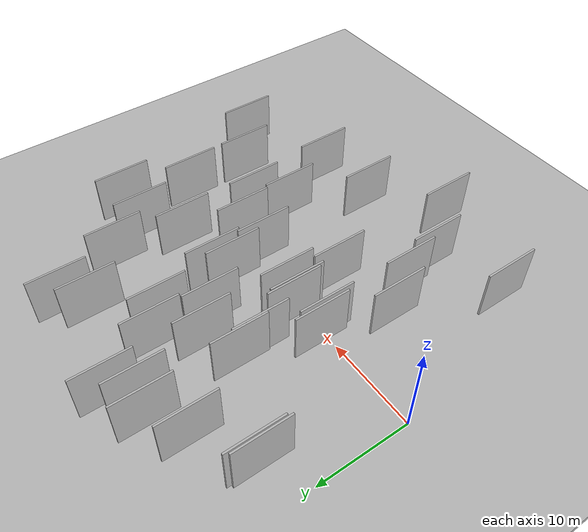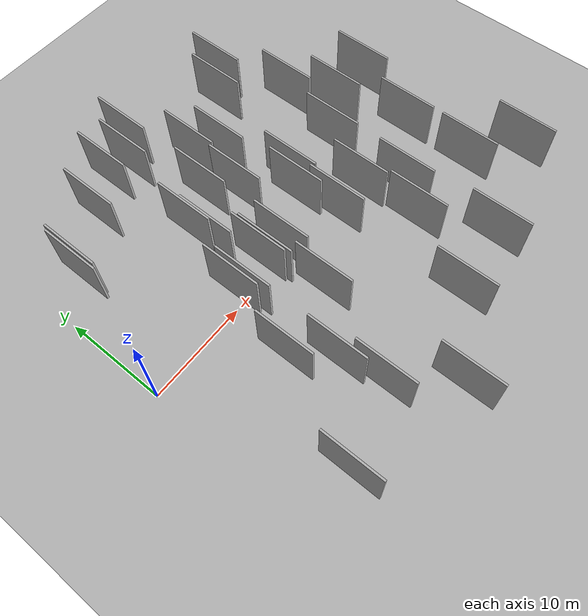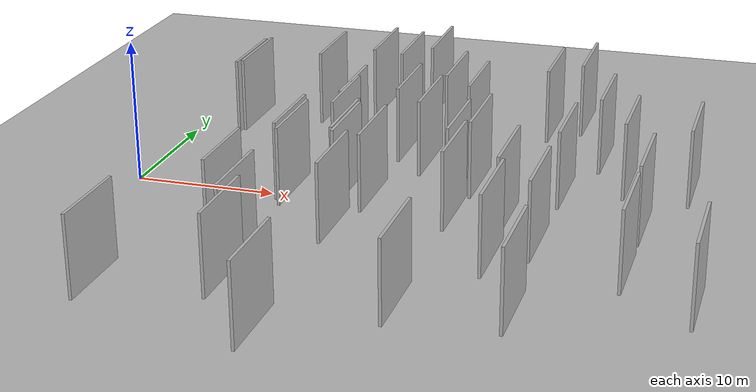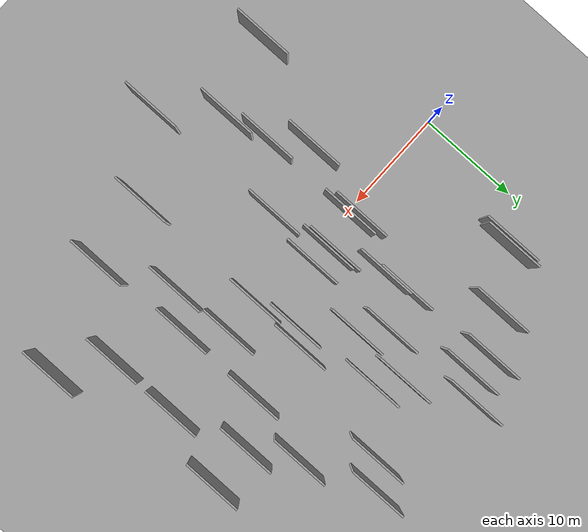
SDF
<?xml version="1.0" encoding="utf-8"?>

<sdf version="1.6">

   <world name="default">

      <gui fullscreen="0">

         <camera name="user_camera">

            <pose>-15 0 4.57585 0 0 0</pose>

            <view_controller>orbit</view_controller>

         </camera>

      </gui>

      <scene>

         <sky>

           <clouds>

             <speed>12</speed>

           </clouds>

         </sky>

         <ambient>0.4 0.4 0.4 1</ambient>

         <background>0.7 0.7 0.7 1</background>

         <shadows>1</shadows>

      </scene>

      <gravity>0 0 -9.8066</gravity>

      <magnetic_field>6e-06 2.3e-05 -4.2e-05</magnetic_field>

      <physics default="0" name="default_physics" type="ode">

         <ode>

            <solver>

               <type>quick</type>

               <iters>10</iters>

               <sor>1.0</sor>

               <use_dynamic_moi_rescaling>0</use_dynamic_moi_rescaling>

            </solver>

            <constraints>

               <cfm>0</cfm>

               <erp>0.2</erp>

               <contact_max_correcting_vel>100</contact_max_correcting_vel>

               <contact_surface_layer>0.001</contact_surface_layer>

            </constraints>

         </ode>

         <max_step_size>0.004</max_step_size>

         <real_time_factor>1</real_time_factor>

         <real_time_update_rate>250</real_time_update_rate>

      </physics>

      <light name="sun" type="directional">

         <cast_shadows>1</cast_shadows>

         <pose>0 0 10 0 0 0</pose>

         <diffuse>0.8 0.8 0.8 1</diffuse>

         <specular>0.2 0.2 0.2 1</specular>

         <attenuation>

            <range>1000</range>

            <constant>0.9</constant>

            <linear>0.01</linear>

            <quadratic>0.001</quadratic>

         </attenuation>

         <direction>-0.5 0.1 -0.9</direction>

      </light>

      <include>

         <name>ground_plane_1</name>

         <uri>model://HANNAS_ground_plane</uri>

         <pose>0 0 0  0 0 0</pose>

      </include>

      <include>

         <name>ground_plane_2</name>

         <uri>model://HANNAS_ground_plane</uri>

         <pose>100 0 0  0 0 0</pose>

      </include>

      <model name="HANNAS_wall_1">

         <static>1</static>

         <pose frame="">12.2431 -14.0350 0.0 0.000000 0.000000 1.570796</pose>

         <link name="link">

            <pose frame="">0 0 3.00 0 0 0</pose>

            <collision name="collision">

               <geometry>

                  <box>

                     <size>6.00 0.2 6.00</size>

                  </box>

               </geometry>

               <max_contacts>10</max_contacts>

               <surface>

                  <contact>

                     <ode/>

                  </contact>

                  <bounce/>

                  <friction>

                     <torsional>

                        <ode/>

                     </torsional>

                     <ode/>

                  </friction>

               </surface>

            </collision>

            <visual name="visual">

               <cast_shadows>0</cast_shadows>

               <geometry>

                  <box>

                     <size>6.00 0.2 6.00</size>

                  </box>

               </geometry>

               <material>

                  <script>

                     <uri>model://HANNAS_wall/materials/scripts</uri>

                     <uri>model://HANNAS_wall/materials/textures</uri>

                     <name>vrc/HANNAS_wall</name>

                  </script>

               </material>

            </visual>

            <self_collide>0</self_collide>

            <enable_wind>0</enable_wind>

            <kinematic>0</kinematic>

         </link>

      </model>

      <model name="HANNAS_wall_2">

         <static>1</static>

         <pose frame="">27.0997 -6.8544 0.0 0.000000 0.000000 1.570796</pose>

         <link name="link">

            <pose frame="">0 0 3.00 0 0 0</pose>

            <collision name="collision">

               <geometry>

                  <box>

                     <size>6.00 0.2 6.00</size>

                  </box>

               </geometry>

               <max_contacts>10</max_contacts>

               <surface>

                  <contact>

                     <ode/>

                  </contact>

                  <bounce/>

                  <friction>

                     <torsional>

                        <ode/>

                     </torsional>

                     <ode/>

                  </friction>

               </surface>

            </collision>

            <visual name="visual">

               <cast_shadows>0</cast_shadows>

               <geometry>

                  <box>

                     <size>6.00 0.2 6.00</size>

                  </box>

               </geometry>

               <material>

                  <script>

                     <uri>model://HANNAS_wall/materials/scripts</uri>

                     <uri>model://HANNAS_wall/materials/textures</uri>

                     <name>vrc/HANNAS_wall</name>

                  </script>

               </material>

            </visual>

            <self_collide>0</self_collide>

            <enable_wind>0</enable_wind>

            <kinematic>0</kinematic>

         </link>

      </model>

      <model name="HANNAS_wall_3">

         <static>1</static>

         <pose frame="">31.1081 11.6562 0.0 0.000000 0.000000 1.570796</pose>

         <link name="link">

            <pose frame="">0 0 3.00 0 0 0</pose>

            <collision name="collision">

               <geometry>

                  <box>

                     <size>6.00 0.2 6.00</size>

                  </box>

               </geometry>

               <max_contacts>10</max_contacts>

               <surface>

                  <contact>

                     <ode/>

                  </contact>

                  <bounce/>

                  <friction>

                     <torsional>

                        <ode/>

                     </torsional>

                     <ode/>

                  </friction>

               </surface>

            </collision>

            <visual name="visual">

               <cast_shadows>0</cast_shadows>

               <geometry>

                  <box>

                     <size>6.00 0.2 6.00</size>

                  </box>

               </geometry>

               <material>

                  <script>

                     <uri>model://HANNAS_wall/materials/scripts</uri>

                     <uri>model://HANNAS_wall/materials/textures</uri>

                     <name>vrc/HANNAS_wall</name>

                  </script>

               </material>

            </visual>

            <self_collide>0</self_collide>

            <enable_wind>0</enable_wind>

            <kinematic>0</kinematic>

         </link>

      </model>

      <model name="HANNAS_wall_4">

         <static>1</static>

         <pose frame="">37.8687 7.3171 0.0 0.000000 0.000000 1.570796</pose>

         <link name="link">

            <pose frame="">0 0 3.00 0 0 0</pose>

            <collision name="collision">

               <geometry>

                  <box>

                     <size>6.00 0.2 6.00</size>

                  </box>

               </geometry>

               <max_contacts>10</max_contacts>

               <surface>

                  <contact>

                     <ode/>

                  </contact>

                  <bounce/>

                  <friction>

                     <torsional>

                        <ode/>

                     </torsional>

                     <ode/>

                  </friction>

               </surface>

            </collision>

            <visual name="visual">

               <cast_shadows>0</cast_shadows>

               <geometry>

                  <box>

                     <size>6.00 0.2 6.00</size>

                  </box>

               </geometry>

               <material>

                  <script>

                     <uri>model://HANNAS_wall/materials/scripts</uri>

                     <uri>model://HANNAS_wall/materials/textures</uri>

                     <name>vrc/HANNAS_wall</name>

                  </script>

               </material>

            </visual>

            <self_collide>0</self_collide>

            <enable_wind>0</enable_wind>

            <kinematic>0</kinematic>

         </link>

      </model>

      <model name="HANNAS_wall_5">

         <static>1</static>

         <pose frame="">15.1503 0.8264 0.0 0.000000 0.000000 1.570796</pose>

         <link name="link">

            <pose frame="">0 0 3.00 0 0 0</pose>

            <collision name="collision">

               <geometry>

                  <box>

                     <size>6.00 0.2 6.00</size>

                  </box>

               </geometry>

               <max_contacts>10</max_contacts>

               <surface>

                  <contact>

                     <ode/>

                  </contact>

                  <bounce/>

                  <friction>

                     <torsional>

                        <ode/>

                     </torsional>

                     <ode/>

                  </friction>

               </surface>

            </collision>

            <visual name="visual">

               <cast_shadows>0</cast_shadows>

               <geometry>

                  <box>

                     <size>6.00 0.2 6.00</size>

                  </box>

               </geometry>

               <material>

                  <script>

                     <uri>model://HANNAS_wall/materials/scripts</uri>

                     <uri>model://HANNAS_wall/materials/textures</uri>

                     <name>vrc/HANNAS_wall</name>

                  </script>

               </material>

            </visual>

            <self_collide>0</self_collide>

            <enable_wind>0</enable_wind>

            <kinematic>0</kinematic>

         </link>

      </model>

      <model name="HANNAS_wall_6">

         <static>1</static>

         <pose frame="">26.7278 -0.7350 0.0 0.000000 0.000000 1.570796</pose>

         <link name="link">

            <pose frame="">0 0 3.00 0 0 0</pose>

            <collision name="collision">

               <geometry>

                  <box>

                     <size>6.00 0.2 6.00</size>

                  </box>

               </geometry>

               <max_contacts>10</max_contacts>

               <surface>

                  <contact>

                     <ode/>

                  </contact>

                  <bounce/>

                  <friction>

                     <torsional>

                        <ode/>

                     </torsional>

                     <ode/>

                  </friction>

               </surface>

            </collision>

            <visual name="visual">

               <cast_shadows>0</cast_shadows>

               <geometry>

                  <box>

                     <size>6.00 0.2 6.00</size>

                  </box>

               </geometry>

               <material>

                  <script>

                     <uri>model://HANNAS_wall/materials/scripts</uri>

                     <uri>model://HANNAS_wall/materials/textures</uri>

                     <name>vrc/HANNAS_wall</name>

                  </script>

               </material>

            </visual>

            <self_collide>0</self_collide>

            <enable_wind>0</enable_wind>

            <kinematic>0</kinematic>

         </link>

      </model>

      <model name="HANNAS_wall_7">

         <static>1</static>

         <pose frame="">9.1237 -6.3255 0.0 0.000000 0.000000 1.570796</pose>

         <link name="link">

            <pose frame="">0 0 3.00 0 0 0</pose>

            <collision name="collision">

               <geometry>

                  <box>

                     <size>6.00 0.2 6.00</size>

                  </box>

               </geometry>

               <max_contacts>10</max_contacts>

               <surface>

                  <contact>

                     <ode/>

                  </contact>

                  <bounce/>

                  <friction>

                     <torsional>

                        <ode/>

                     </torsional>

                     <ode/>

                  </friction>

               </surface>

            </collision>

            <visual name="visual">

               <cast_shadows>0</cast_shadows>

               <geometry>

                  <box>

                     <size>6.00 0.2 6.00</size>

                  </box>

               </geometry>

               <material>

                  <script>

                     <uri>model://HANNAS_wall/materials/scripts</uri>

                     <uri>model://HANNAS_wall/materials/textures</uri>

                     <name>vrc/HANNAS_wall</name>

                  </script>

               </material>

            </visual>

            <self_collide>0</self_collide>

            <enable_wind>0</enable_wind>

            <kinematic>0</kinematic>

         </link>

      </model>

      <model name="HANNAS_wall_8">

         <static>1</static>

         <pose frame="">40.1917 -10.1299 0.0 0.000000 0.000000 1.570796</pose>

         <link name="link">

            <pose frame="">0 0 3.00 0 0 0</pose>

            <collision name="collision">

               <geometry>

                  <box>

                     <size>6.00 0.2 6.00</size>

                  </box>

               </geometry>

               <max_contacts>10</max_contacts>

               <surface>

                  <contact>

                     <ode/>

                  </contact>

                  <bounce/>

                  <friction>

                     <torsional>

                        <ode/>

                     </torsional>

                     <ode/>

                  </friction>

               </surface>

            </collision>

            <visual name="visual">

               <cast_shadows>0</cast_shadows>

               <geometry>

                  <box>

                     <size>6.00 0.2 6.00</size>

                  </box>

               </geometry>

               <material>

                  <script>

                     <uri>model://HANNAS_wall/materials/scripts</uri>

                     <uri>model://HANNAS_wall/materials/textures</uri>

                     <name>vrc/HANNAS_wall</name>

                  </script>

               </material>

            </visual>

            <self_collide>0</self_collide>

            <enable_wind>0</enable_wind>

            <kinematic>0</kinematic>

         </link>

      </model>

      <model name="HANNAS_wall_9">

         <static>1</static>

         <pose frame="">11.0184 1.0518 0.0 0.000000 0.000000 1.570796</pose>

         <link name="link">

            <pose frame="">0 0 3.00 0 0 0</pose>

            <collision name="collision">

               <geometry>

                  <box>

                     <size>6.00 0.2 6.00</size>

                  </box>

               </geometry>

               <max_contacts>10</max_contacts>

               <surface>

                  <contact>

                     <ode/>

                  </contact>

                  <bounce/>

                  <friction>

                     <torsional>

                        <ode/>

                     </torsional>

                     <ode/>

                  </friction>

               </surface>

            </collision>

            <visual name="visual">

               <cast_shadows>0</cast_shadows>

               <geometry>

                  <box>

                     <size>6.00 0.2 6.00</size>

                  </box>

               </geometry>

               <material>

                  <script>

                     <uri>model://HANNAS_wall/materials/scripts</uri>

                     <uri>model://HANNAS_wall/materials/textures</uri>

                     <name>vrc/HANNAS_wall</name>

                  </script>

               </material>

            </visual>

            <self_collide>0</self_collide>

            <enable_wind>0</enable_wind>

            <kinematic>0</kinematic>

         </link>

      </model>

      <model name="HANNAS_wall_10">

         <static>1</static>

         <pose frame="">19.4521 13.7732 0.0 0.000000 0.000000 1.570796</pose>

         <link name="link">

            <pose frame="">0 0 3.00 0 0 0</pose>

            <collision name="collision">

               <geometry>

                  <box>

                     <size>6.00 0.2 6.00</size>

                  </box>

               </geometry>

               <max_contacts>10</max_contacts>

               <surface>

                  <contact>

                     <ode/>

                  </contact>

                  <bounce/>

                  <friction>

                     <torsional>

                        <ode/>

                     </torsional>

                     <ode/>

                  </friction>

               </surface>

            </collision>

            <visual name="visual">

               <cast_shadows>0</cast_shadows>

               <geometry>

                  <box>

                     <size>6.00 0.2 6.00</size>

                  </box>

               </geometry>

               <material>

                  <script>

                     <uri>model://HANNAS_wall/materials/scripts</uri>

                     <uri>model://HANNAS_wall/materials/textures</uri>

                     <name>vrc/HANNAS_wall</name>

                  </script>

               </material>

            </visual>

            <self_collide>0</self_collide>

            <enable_wind>0</enable_wind>

            <kinematic>0</kinematic>

         </link>

      </model>

      <model name="HANNAS_wall_11">

         <static>1</static>

         <pose frame="">33.4874 7.4057 0.0 0.000000 0.000000 1.570796</pose>

         <link name="link">

            <pose frame="">0 0 3.00 0 0 0</pose>

            <collision name="collision">

               <geometry>

                  <box>

                     <size>6.00 0.2 6.00</size>

                  </box>

               </geometry>

               <max_contacts>10</max_contacts>

               <surface>

                  <contact>

                     <ode/>

                  </contact>

                  <bounce/>

                  <friction>

                     <torsional>

                        <ode/>

                     </torsional>

                     <ode/>

                  </friction>

               </surface>

            </collision>

            <visual name="visual">

               <cast_shadows>0</cast_shadows>

               <geometry>

                  <box>

                     <size>6.00 0.2 6.00</size>

                  </box>

               </geometry>

               <material>

                  <script>

                     <uri>model://HANNAS_wall/materials/scripts</uri>

                     <uri>model://HANNAS_wall/materials/textures</uri>

                     <name>vrc/HANNAS_wall</name>

                  </script>

               </material>

            </visual>

            <self_collide>0</self_collide>

            <enable_wind>0</enable_wind>

            <kinematic>0</kinematic>

         </link>

      </model>

      <model name="HANNAS_wall_12">

         <static>1</static>

         <pose frame="">16.3229 -19.4222 0.0 0.000000 0.000000 1.570796</pose>

         <link name="link">

            <pose frame="">0 0 3.00 0 0 0</pose>

            <collision name="collision">

               <geometry>

                  <box>

                     <size>6.00 0.2 6.00</size>

                  </box>

               </geometry>

               <max_contacts>10</max_contacts>

               <surface>

                  <contact>

                     <ode/>

                  </contact>

                  <bounce/>

                  <friction>

                     <torsional>

                        <ode/>

                     </torsional>

                     <ode/>

                  </friction>

               </surface>

            </collision>

            <visual name="visual">

               <cast_shadows>0</cast_shadows>

               <geometry>

                  <box>

                     <size>6.00 0.2 6.00</size>

                  </box>

               </geometry>

               <material>

                  <script>

                     <uri>model://HANNAS_wall/materials/scripts</uri>

                     <uri>model://HANNAS_wall/materials/textures</uri>

                     <name>vrc/HANNAS_wall</name>

                  </script>

               </material>

            </visual>

            <self_collide>0</self_collide>

            <enable_wind>0</enable_wind>

            <kinematic>0</kinematic>

         </link>

      </model>

      <model name="HANNAS_wall_13">

         <static>1</static>

         <pose frame="">16.9138 9.9821 0.0 0.000000 0.000000 1.570796</pose>

         <link name="link">

            <pose frame="">0 0 3.00 0 0 0</pose>

            <collision name="collision">

               <geometry>

                  <box>

                     <size>6.00 0.2 6.00</size>

                  </box>

               </geometry>

               <max_contacts>10</max_contacts>

               <surface>

                  <contact>

                     <ode/>

                  </contact>

                  <bounce/>

                  <friction>

                     <torsional>

                        <ode/>

                     </torsional>

                     <ode/>

                  </friction>

               </surface>

            </collision>

            <visual name="visual">

               <cast_shadows>0</cast_shadows>

               <geometry>

                  <box>

                     <size>6.00 0.2 6.00</size>

                  </box>

               </geometry>

               <material>

                  <script>

                     <uri>model://HANNAS_wall/materials/scripts</uri>

                     <uri>model://HANNAS_wall/materials/textures</uri>

                     <name>vrc/HANNAS_wall</name>

                  </script>

               </material>

            </visual>

            <self_collide>0</self_collide>

            <enable_wind>0</enable_wind>

            <kinematic>0</kinematic>

         </link>

      </model>

      <model name="HANNAS_wall_14">

         <static>1</static>

         <pose frame="">12.5975 18.2146 0.0 0.000000 0.000000 1.570796</pose>

         <link name="link">

            <pose frame="">0 0 3.00 0 0 0</pose>

            <collision name="collision">

               <geometry>

                  <box>

                     <size>6.00 0.2 6.00</size>

                  </box>

               </geometry>

               <max_contacts>10</max_contacts>

               <surface>

                  <contact>

                     <ode/>

                  </contact>

                  <bounce/>

                  <friction>

                     <torsional>

                        <ode/>

                     </torsional>

                     <ode/>

                  </friction>

               </surface>

            </collision>

            <visual name="visual">

               <cast_shadows>0</cast_shadows>

               <geometry>

                  <box>

                     <size>6.00 0.2 6.00</size>

                  </box>

               </geometry>

               <material>

                  <script>

                     <uri>model://HANNAS_wall/materials/scripts</uri>

                     <uri>model://HANNAS_wall/materials/textures</uri>

                     <name>vrc/HANNAS_wall</name>

                  </script>

               </material>

            </visual>

            <self_collide>0</self_collide>

            <enable_wind>0</enable_wind>

            <kinematic>0</kinematic>

         </link>

      </model>

      <model name="HANNAS_wall_15">

         <static>1</static>

         <pose frame="">3.6692 12.4958 0.0 0.000000 0.000000 1.570796</pose>

         <link name="link">

            <pose frame="">0 0 3.00 0 0 0</pose>

            <collision name="collision">

               <geometry>

                  <box>

                     <size>6.00 0.2 6.00</size>

                  </box>

               </geometry>

               <max_contacts>10</max_contacts>

               <surface>

                  <contact>

                     <ode/>

                  </contact>

                  <bounce/>

                  <friction>

                     <torsional>

                        <ode/>

                     </torsional>

                     <ode/>

                  </friction>

               </surface>

            </collision>

            <visual name="visual">

               <cast_shadows>0</cast_shadows>

               <geometry>

                  <box>

                     <size>6.00 0.2 6.00</size>

                  </box>

               </geometry>

               <material>

                  <script>

                     <uri>model://HANNAS_wall/materials/scripts</uri>

                     <uri>model://HANNAS_wall/materials/textures</uri>

                     <name>vrc/HANNAS_wall</name>

                  </script>

               </material>

            </visual>

            <self_collide>0</self_collide>

            <enable_wind>0</enable_wind>

            <kinematic>0</kinematic>

         </link>

      </model>

      <model name="HANNAS_wall_16">

         <static>1</static>

         <pose frame="">11.4764 -9.8431 0.0 0.000000 0.000000 1.570796</pose>

         <link name="link">

            <pose frame="">0 0 3.00 0 0 0</pose>

            <collision name="collision">

               <geometry>

                  <box>

                     <size>6.00 0.2 6.00</size>

                  </box>

               </geometry>

               <max_contacts>10</max_contacts>

               <surface>

                  <contact>

                     <ode/>

                  </contact>

                  <bounce/>

                  <friction>

                     <torsional>

                        <ode/>

                     </torsional>

                     <ode/>

                  </friction>

               </surface>

            </collision>

            <visual name="visual">

               <cast_shadows>0</cast_shadows>

               <geometry>

                  <box>

                     <size>6.00 0.2 6.00</size>

                  </box>

               </geometry>

               <material>

                  <script>

                     <uri>model://HANNAS_wall/materials/scripts</uri>

                     <uri>model://HANNAS_wall/materials/textures</uri>

                     <name>vrc/HANNAS_wall</name>

                  </script>

               </material>

            </visual>

            <self_collide>0</self_collide>

            <enable_wind>0</enable_wind>

            <kinematic>0</kinematic>

         </link>

      </model>

      <model name="HANNAS_wall_17">

         <static>1</static>

         <pose frame="">22.3352 3.3064 0.0 0.000000 0.000000 1.570796</pose>

         <link name="link">

            <pose frame="">0 0 3.00 0 0 0</pose>

            <collision name="collision">

               <geometry>

                  <box>

                     <size>6.00 0.2 6.00</size>

                  </box>

               </geometry>

               <max_contacts>10</max_contacts>

               <surface>

                  <contact>

                     <ode/>

                  </contact>

                  <bounce/>

                  <friction>

                     <torsional>

                        <ode/>

                     </torsional>

                     <ode/>

                  </friction>

               </surface>

            </collision>

            <visual name="visual">

               <cast_shadows>0</cast_shadows>

               <geometry>

                  <box>

                     <size>6.00 0.2 6.00</size>

                  </box>

               </geometry>

               <material>

                  <script>

                     <uri>model://HANNAS_wall/materials/scripts</uri>

                     <uri>model://HANNAS_wall/materials/textures</uri>

                     <name>vrc/HANNAS_wall</name>

                  </script>

               </material>

            </visual>

            <self_collide>0</self_collide>

            <enable_wind>0</enable_wind>

            <kinematic>0</kinematic>

         </link>

      </model>

      <model name="HANNAS_wall_18">

         <static>1</static>

         <pose frame="">28.5294 18.6801 0.0 0.000000 0.000000 1.570796</pose>

         <link name="link">

            <pose frame="">0 0 3.00 0 0 0</pose>

            <collision name="collision">

               <geometry>

                  <box>

                     <size>6.00 0.2 6.00</size>

                  </box>

               </geometry>

               <max_contacts>10</max_contacts>

               <surface>

                  <contact>

                     <ode/>

                  </contact>

                  <bounce/>

                  <friction>

                     <torsional>

                        <ode/>

                     </torsional>

                     <ode/>

                  </friction>

               </surface>

            </collision>

            <visual name="visual">

               <cast_shadows>0</cast_shadows>

               <geometry>

                  <box>

                     <size>6.00 0.2 6.00</size>

                  </box>

               </geometry>

               <material>

                  <script>

                     <uri>model://HANNAS_wall/materials/scripts</uri>

                     <uri>model://HANNAS_wall/materials/textures</uri>

                     <name>vrc/HANNAS_wall</name>

                  </script>

               </material>

            </visual>

            <self_collide>0</self_collide>

            <enable_wind>0</enable_wind>

            <kinematic>0</kinematic>

         </link>

      </model>

      <model name="HANNAS_wall_19">

         <static>1</static>

         <pose frame="">23.4702 4.8727 0.0 0.000000 0.000000 1.570796</pose>

         <link name="link">

            <pose frame="">0 0 3.00 0 0 0</pose>

            <collision name="collision">

               <geometry>

                  <box>

                     <size>6.00 0.2 6.00</size>

                  </box>

               </geometry>

               <max_contacts>10</max_contacts>

               <surface>

                  <contact>

                     <ode/>

                  </contact>

                  <bounce/>

                  <friction>

                     <torsional>

                        <ode/>

                     </torsional>

                     <ode/>

                  </friction>

               </surface>

            </collision>

            <visual name="visual">

               <cast_shadows>0</cast_shadows>

               <geometry>

                  <box>

                     <size>6.00 0.2 6.00</size>

                  </box>

               </geometry>

               <material>

                  <script>

                     <uri>model://HANNAS_wall/materials/scripts</uri>

                     <uri>model://HANNAS_wall/materials/textures</uri>

                     <name>vrc/HANNAS_wall</name>

                  </script>

               </material>

            </visual>

            <self_collide>0</self_collide>

            <enable_wind>0</enable_wind>

            <kinematic>0</kinematic>

         </link>

      </model>

      <model name="HANNAS_wall_20">

         <static>1</static>

         <pose frame="">29.5401 4.7031 0.0 0.000000 0.000000 1.570796</pose>

         <link name="link">

            <pose frame="">0 0 3.00 0 0 0</pose>

            <collision name="collision">

               <geometry>

                  <box>

                     <size>6.00 0.2 6.00</size>

                  </box>

               </geometry>

               <max_contacts>10</max_contacts>

               <surface>

                  <contact>

                     <ode/>

                  </contact>

                  <bounce/>

                  <friction>

                     <torsional>

                        <ode/>

                     </torsional>

                     <ode/>

                  </friction>

               </surface>

            </collision>

            <visual name="visual">

               <cast_shadows>0</cast_shadows>

               <geometry>

                  <box>

                     <size>6.00 0.2 6.00</size>

                  </box>

               </geometry>

               <material>

                  <script>

                     <uri>model://HANNAS_wall/materials/scripts</uri>

                     <uri>model://HANNAS_wall/materials/textures</uri>

                     <name>vrc/HANNAS_wall</name>

                  </script>

               </material>

            </visual>

            <self_collide>0</self_collide>

            <enable_wind>0</enable_wind>

            <kinematic>0</kinematic>

         </link>

      </model>

      <model name="HANNAS_wall_21">

         <static>1</static>

         <pose frame="">19.0841 7.7829 0.0 0.000000 0.000000 1.570796</pose>

         <link name="link">

            <pose frame="">0 0 3.00 0 0 0</pose>

            <collision name="collision">

               <geometry>

                  <box>

                     <size>6.00 0.2 6.00</size>

                  </box>

               </geometry>

               <max_contacts>10</max_contacts>

               <surface>

                  <contact>

                     <ode/>

                  </contact>

                  <bounce/>

                  <friction>

                     <torsional>

                        <ode/>

                     </torsional>

                     <ode/>

                  </friction>

               </surface>

            </collision>

            <visual name="visual">

               <cast_shadows>0</cast_shadows>

               <geometry>

                  <box>

                     <size>6.00 0.2 6.00</size>

                  </box>

               </geometry>

               <material>

                  <script>

                     <uri>model://HANNAS_wall/materials/scripts</uri>

                     <uri>model://HANNAS_wall/materials/textures</uri>

                     <name>vrc/HANNAS_wall</name>

                  </script>

               </material>

            </visual>

            <self_collide>0</self_collide>

            <enable_wind>0</enable_wind>

            <kinematic>0</kinematic>

         </link>

      </model>

      <model name="HANNAS_wall_22">

         <static>1</static>

         <pose frame="">16.1011 -4.8482 0.0 0.000000 0.000000 1.570796</pose>

         <link name="link">

            <pose frame="">0 0 3.00 0 0 0</pose>

            <collision name="collision">

               <geometry>

                  <box>

                     <size>6.00 0.2 6.00</size>

                  </box>

               </geometry>

               <max_contacts>10</max_contacts>

               <surface>

                  <contact>

                     <ode/>

                  </contact>

                  <bounce/>

                  <friction>

                     <torsional>

                        <ode/>

                     </torsional>

                     <ode/>

                  </friction>

               </surface>

            </collision>

            <visual name="visual">

               <cast_shadows>0</cast_shadows>

               <geometry>

                  <box>

                     <size>6.00 0.2 6.00</size>

                  </box>

               </geometry>

               <material>

                  <script>

                     <uri>model://HANNAS_wall/materials/scripts</uri>

                     <uri>model://HANNAS_wall/materials/textures</uri>

                     <name>vrc/HANNAS_wall</name>

                  </script>

               </material>

            </visual>

            <self_collide>0</self_collide>

            <enable_wind>0</enable_wind>

            <kinematic>0</kinematic>

         </link>

      </model>

      <model name="HANNAS_wall_23">

         <static>1</static>

         <pose frame="">35.5361 0.2810 0.0 0.000000 0.000000 1.570796</pose>

         <link name="link">

            <pose frame="">0 0 3.00 0 0 0</pose>

            <collision name="collision">

               <geometry>

                  <box>

                     <size>6.00 0.2 6.00</size>

                  </box>

               </geometry>

               <max_contacts>10</max_contacts>

               <surface>

                  <contact>

                     <ode/>

                  </contact>

                  <bounce/>

                  <friction>

                     <torsional>

                        <ode/>

                     </torsional>

                     <ode/>

                  </friction>

               </surface>

            </collision>

            <visual name="visual">

               <cast_shadows>0</cast_shadows>

               <geometry>

                  <box>

                     <size>6.00 0.2 6.00</size>

                  </box>

               </geometry>

               <material>

                  <script>

                     <uri>model://HANNAS_wall/materials/scripts</uri>

                     <uri>model://HANNAS_wall/materials/textures</uri>

                     <name>vrc/HANNAS_wall</name>

                  </script>

               </material>

            </visual>

            <self_collide>0</self_collide>

            <enable_wind>0</enable_wind>

            <kinematic>0</kinematic>

         </link>

      </model>

      <model name="HANNAS_wall_24">

         <static>1</static>

         <pose frame="">29.4471 -3.9167 0.0 0.000000 0.000000 1.570796</pose>

         <link name="link">

            <pose frame="">0 0 3.00 0 0 0</pose>

            <collision name="collision">

               <geometry>

                  <box>

                     <size>6.00 0.2 6.00</size>

                  </box>

               </geometry>

               <max_contacts>10</max_contacts>

               <surface>

                  <contact>

                     <ode/>

                  </contact>

                  <bounce/>

                  <friction>

                     <torsional>

                        <ode/>

                     </torsional>

                     <ode/>

                  </friction>

               </surface>

            </collision>

            <visual name="visual">

               <cast_shadows>0</cast_shadows>

               <geometry>

                  <box>

                     <size>6.00 0.2 6.00</size>

                  </box>

               </geometry>

               <material>

                  <script>

                     <uri>model://HANNAS_wall/materials/scripts</uri>

                     <uri>model://HANNAS_wall/materials/textures</uri>

                     <name>vrc/HANNAS_wall</name>

                  </script>

               </material>

            </visual>

            <self_collide>0</self_collide>

            <enable_wind>0</enable_wind>

            <kinematic>0</kinematic>

         </link>

      </model>

      <model name="HANNAS_wall_25">

         <static>1</static>

         <pose frame="">11.5138 0.1690 0.0 0.000000 0.000000 1.570796</pose>

         <link name="link">

            <pose frame="">0 0 3.00 0 0 0</pose>

            <collision name="collision">

               <geometry>

                  <box>

                     <size>6.00 0.2 6.00</size>

                  </box>

               </geometry>

               <max_contacts>10</max_contacts>

               <surface>

                  <contact>

                     <ode/>

                  </contact>

                  <bounce/>

                  <friction>

                     <torsional>

                        <ode/>

                     </torsional>

                     <ode/>

                  </friction>

               </surface>

            </collision>

            <visual name="visual">

               <cast_shadows>0</cast_shadows>

               <geometry>

                  <box>

                     <size>6.00 0.2 6.00</size>

                  </box>

               </geometry>

               <material>

                  <script>

                     <uri>model://HANNAS_wall/materials/scripts</uri>

                     <uri>model://HANNAS_wall/materials/textures</uri>

                     <name>vrc/HANNAS_wall</name>

                  </script>

               </material>

            </visual>

            <self_collide>0</self_collide>

            <enable_wind>0</enable_wind>

            <kinematic>0</kinematic>

         </link>

      </model>

      <model name="HANNAS_wall_26">

         <static>1</static>

         <pose frame="">23.2149 -14.4304 0.0 0.000000 0.000000 1.570796</pose>

         <link name="link">

            <pose frame="">0 0 3.00 0 0 0</pose>

            <collision name="collision">

               <geometry>

                  <box>

                     <size>6.00 0.2 6.00</size>

                  </box>

               </geometry>

               <max_contacts>10</max_contacts>

               <surface>

                  <contact>

                     <ode/>

                  </contact>

                  <bounce/>

                  <friction>

                     <torsional>

                        <ode/>

                     </torsional>

                     <ode/>

                  </friction>

               </surface>

            </collision>

            <visual name="visual">

               <cast_shadows>0</cast_shadows>

               <geometry>

                  <box>

                     <size>6.00 0.2 6.00</size>

                  </box>

               </geometry>

               <material>

                  <script>

                     <uri>model://HANNAS_wall/materials/scripts</uri>

                     <uri>model://HANNAS_wall/materials/textures</uri>

                     <name>vrc/HANNAS_wall</name>

                  </script>

               </material>

            </visual>

            <self_collide>0</self_collide>

            <enable_wind>0</enable_wind>

            <kinematic>0</kinematic>

         </link>

      </model>

      <model name="HANNAS_wall_27">

         <static>1</static>

         <pose frame="">23.1146 -0.8007 0.0 0.000000 0.000000 1.570796</pose>

         <link name="link">

            <pose frame="">0 0 3.00 0 0 0</pose>

            <collision name="collision">

               <geometry>

                  <box>

                     <size>6.00 0.2 6.00</size>

                  </box>

               </geometry>

               <max_contacts>10</max_contacts>

               <surface>

                  <contact>

                     <ode/>

                  </contact>

                  <bounce/>

                  <friction>

                     <torsional>

                        <ode/>

                     </torsional>

                     <ode/>

                  </friction>

               </surface>

            </collision>

            <visual name="visual">

               <cast_shadows>0</cast_shadows>

               <geometry>

                  <box>

                     <size>6.00 0.2 6.00</size>

                  </box>

               </geometry>

               <material>

                  <script>

                     <uri>model://HANNAS_wall/materials/scripts</uri>

                     <uri>model://HANNAS_wall/materials/textures</uri>

                     <name>vrc/HANNAS_wall</name>

                  </script>

               </material>

            </visual>

            <self_collide>0</self_collide>

            <enable_wind>0</enable_wind>

            <kinematic>0</kinematic>

         </link>

      </model>

      <model name="HANNAS_wall_28">

         <static>1</static>

         <pose frame="">4.8129 -16.3485 0.0 0.000000 0.000000 1.570796</pose>

         <link name="link">

            <pose frame="">0 0 3.00 0 0 0</pose>

            <collision name="collision">

               <geometry>

                  <box>

                     <size>6.00 0.2 6.00</size>

                  </box>

               </geometry>

               <max_contacts>10</max_contacts>

               <surface>

                  <contact>

                     <ode/>

                  </contact>

                  <bounce/>

                  <friction>

                     <torsional>

                        <ode/>

                     </torsional>

                     <ode/>

                  </friction>

               </surface>

            </collision>

            <visual name="visual">

               <cast_shadows>0</cast_shadows>

               <geometry>

                  <box>

                     <size>6.00 0.2 6.00</size>

                  </box>

               </geometry>

               <material>

                  <script>

                     <uri>model://HANNAS_wall/materials/scripts</uri>

                     <uri>model://HANNAS_wall/materials/textures</uri>

                     <name>vrc/HANNAS_wall</name>

                  </script>

               </material>

            </visual>

            <self_collide>0</self_collide>

            <enable_wind>0</enable_wind>

            <kinematic>0</kinematic>

         </link>

      </model>

      <model name="HANNAS_wall_29">

         <static>1</static>

         <pose frame="">16.6911 19.8146 0.0 0.000000 0.000000 1.570796</pose>

         <link name="link">

            <pose frame="">0 0 3.00 0 0 0</pose>

            <collision name="collision">

               <geometry>

                  <box>

                     <size>6.00 0.2 6.00</size>

                  </box>

               </geometry>

               <max_contacts>10</max_contacts>

               <surface>

                  <contact>

                     <ode/>

                  </contact>

                  <bounce/>

                  <friction>

                     <torsional>

                        <ode/>

                     </torsional>

                     <ode/>

                  </friction>

               </surface>

            </collision>

            <visual name="visual">

               <cast_shadows>0</cast_shadows>

               <geometry>

                  <box>

                     <size>6.00 0.2 6.00</size>

                  </box>

               </geometry>

               <material>

                  <script>

                     <uri>model://HANNAS_wall/materials/scripts</uri>

                     <uri>model://HANNAS_wall/materials/textures</uri>

                     <name>vrc/HANNAS_wall</name>

                  </script>

               </material>

            </visual>

            <self_collide>0</self_collide>

            <enable_wind>0</enable_wind>

            <kinematic>0</kinematic>

         </link>

      </model>

      <model name="HANNAS_wall_30">

         <static>1</static>

         <pose frame="">14.8732 1.3589 0.0 0.000000 0.000000 1.570796</pose>

         <link name="link">

            <pose frame="">0 0 3.00 0 0 0</pose>

            <collision name="collision">

               <geometry>

                  <box>

                     <size>6.00 0.2 6.00</size>

                  </box>

               </geometry>

               <max_contacts>10</max_contacts>

               <surface>

                  <contact>

                     <ode/>

                  </contact>

                  <bounce/>

                  <friction>

                     <torsional>

                        <ode/>

                     </torsional>

                     <ode/>

                  </friction>

               </surface>

            </collision>

            <visual name="visual">

               <cast_shadows>0</cast_shadows>

               <geometry>

                  <box>

                     <size>6.00 0.2 6.00</size>

                  </box>

               </geometry>

               <material>

                  <script>

                     <uri>model://HANNAS_wall/materials/scripts</uri>

                     <uri>model://HANNAS_wall/materials/textures</uri>

                     <name>vrc/HANNAS_wall</name>

                  </script>

               </material>

            </visual>

            <self_collide>0</self_collide>

            <enable_wind>0</enable_wind>

            <kinematic>0</kinematic>

         </link>

      </model>

      <model name="HANNAS_wall_31">

         <static>1</static>

         <pose frame="">3.9712 12.9399 0.0 0.000000 0.000000 1.570796</pose>

         <link name="link">

            <pose frame="">0 0 3.00 0 0 0</pose>

            <collision name="collision">

               <geometry>

                  <box>

                     <size>6.00 0.2 6.00</size>

                  </box>

               </geometry>

               <max_contacts>10</max_contacts>

               <surface>

                  <contact>

                     <ode/>

                  </contact>

                  <bounce/>

                  <friction>

                     <torsional>

                        <ode/>

                     </torsional>

                     <ode/>

                  </friction>

               </surface>

            </collision>

            <visual name="visual">

               <cast_shadows>0</cast_shadows>

               <geometry>

                  <box>

                     <size>6.00 0.2 6.00</size>

                  </box>

               </geometry>

               <material>

                  <script>

                     <uri>model://HANNAS_wall/materials/scripts</uri>

                     <uri>model://HANNAS_wall/materials/textures</uri>

                     <name>vrc/HANNAS_wall</name>

                  </script>

               </material>

            </visual>

            <self_collide>0</self_collide>

            <enable_wind>0</enable_wind>

            <kinematic>0</kinematic>

         </link>

      </model>

      <model name="HANNAS_wall_32">

         <static>1</static>

         <pose frame="">13.3617 6.0842 0.0 0.000000 0.000000 1.570796</pose>

         <link name="link">

            <pose frame="">0 0 3.00 0 0 0</pose>

            <collision name="collision">

               <geometry>

                  <box>

                     <size>6.00 0.2 6.00</size>

                  </box>

               </geometry>

               <max_contacts>10</max_contacts>

               <surface>

                  <contact>

                     <ode/>

                  </contact>

                  <bounce/>

                  <friction>

                     <torsional>

                        <ode/>

                     </torsional>

                     <ode/>

                  </friction>

               </surface>

            </collision>

            <visual name="visual">

               <cast_shadows>0</cast_shadows>

               <geometry>

                  <box>

                     <size>6.00 0.2 6.00</size>

                  </box>

               </geometry>

               <material>

                  <script>

                     <uri>model://HANNAS_wall/materials/scripts</uri>

                     <uri>model://HANNAS_wall/materials/textures</uri>

                     <name>vrc/HANNAS_wall</name>

                  </script>

               </material>

            </visual>

            <self_collide>0</self_collide>

            <enable_wind>0</enable_wind>

            <kinematic>0</kinematic>

         </link>

      </model>

      <model name="HANNAS_wall_33">

         <static>1</static>

         <pose frame="">30.0432 -13.6138 0.0 0.000000 0.000000 1.570796</pose>

         <link name="link">

            <pose frame="">0 0 3.00 0 0 0</pose>

            <collision name="collision">

               <geometry>

                  <box>

                     <size>6.00 0.2 6.00</size>

                  </box>

               </geometry>

               <max_contacts>10</max_contacts>

               <surface>

                  <contact>

                     <ode/>

                  </contact>

                  <bounce/>

                  <friction>

                     <torsional>

                        <ode/>

                     </torsional>

                     <ode/>

                  </friction>

               </surface>

            </collision>

            <visual name="visual">

               <cast_shadows>0</cast_shadows>

               <geometry>

                  <box>

                     <size>6.00 0.2 6.00</size>

                  </box>

               </geometry>

               <material>

                  <script>

                     <uri>model://HANNAS_wall/materials/scripts</uri>

                     <uri>model://HANNAS_wall/materials/textures</uri>

                     <name>vrc/HANNAS_wall</name>

                  </script>

               </material>

            </visual>

            <self_collide>0</self_collide>

            <enable_wind>0</enable_wind>

            <kinematic>0</kinematic>

         </link>

      </model>

      <model name="HANNAS_wall_34">

         <static>1</static>

         <pose frame="">35.5554 -6.7265 0.0 0.000000 0.000000 1.570796</pose>

         <link name="link">

            <pose frame="">0 0 3.00 0 0 0</pose>

            <collision name="collision">

               <geometry>

                  <box>

                     <size>6.00 0.2 6.00</size>

                  </box>

               </geometry>

               <max_contacts>10</max_contacts>

               <surface>

                  <contact>

                     <ode/>

                  </contact>

                  <bounce/>

                  <friction>

                     <torsional>

                        <ode/>

                     </torsional>

                     <ode/>

                  </friction>

               </surface>

            </collision>

            <visual name="visual">

               <cast_shadows>0</cast_shadows>

               <geometry>

                  <box>

                     <size>6.00 0.2 6.00</size>

                  </box>

               </geometry>

               <material>

                  <script>

                     <uri>model://HANNAS_wall/materials/scripts</uri>

                     <uri>model://HANNAS_wall/materials/textures</uri>

                     <name>vrc/HANNAS_wall</name>

                  </script>

               </material>

            </visual>

            <self_collide>0</self_collide>

            <enable_wind>0</enable_wind>

            <kinematic>0</kinematic>

         </link>

      </model>

      <model name="HANNAS_wall_35">

         <static>1</static>

         <pose frame="">13.1601 8.4311 0.0 0.000000 0.000000 1.570796</pose>

         <link name="link">

            <pose frame="">0 0 3.00 0 0 0</pose>

            <collision name="collision">

               <geometry>

                  <box>

                     <size>6.00 0.2 6.00</size>

                  </box>

               </geometry>

               <max_contacts>10</max_contacts>

               <surface>

                  <contact>

                     <ode/>

                  </contact>

                  <bounce/>

                  <friction>

                     <torsional>

                        <ode/>

                     </torsional>

                     <ode/>

                  </friction>

               </surface>

            </collision>

            <visual name="visual">

               <cast_shadows>0</cast_shadows>

               <geometry>

                  <box>

                     <size>6.00 0.2 6.00</size>

                  </box>

               </geometry>

               <material>

                  <script>

                     <uri>model://HANNAS_wall/materials/scripts</uri>

                     <uri>model://HANNAS_wall/materials/textures</uri>

                     <name>vrc/HANNAS_wall</name>

                  </script>

               </material>

            </visual>

            <self_collide>0</self_collide>

            <enable_wind>0</enable_wind>

            <kinematic>0</kinematic>

         </link>

      </model>

      <model name="HANNAS_wall_36">

         <static>1</static>

         <pose frame="">17.0728 0.6056 0.0 0.000000 0.000000 1.570796</pose>

         <link name="link">

            <pose frame="">0 0 3.00 0 0 0</pose>

            <collision name="collision">

               <geometry>

                  <box>

                     <size>6.00 0.2 6.00</size>

                  </box>

               </geometry>

               <max_contacts>10</max_contacts>

               <surface>

                  <contact>

                     <ode/>

                  </contact>

                  <bounce/>

                  <friction>

                     <torsional>

                        <ode/>

                     </torsional>

                     <ode/>

                  </friction>

               </surface>

            </collision>

            <visual name="visual">

               <cast_shadows>0</cast_shadows>

               <geometry>

                  <box>

                     <size>6.00 0.2 6.00</size>

                  </box>

               </geometry>

               <material>

                  <script>

                     <uri>model://HANNAS_wall/materials/scripts</uri>

                     <uri>model://HANNAS_wall/materials/textures</uri>

                     <name>vrc/HANNAS_wall</name>

                  </script>

               </material>

            </visual>

            <self_collide>0</self_collide>

            <enable_wind>0</enable_wind>

            <kinematic>0</kinematic>

         </link>

      </model>

      <model name="HANNAS_wall_37">

         <static>1</static>

         <pose frame="">21.5807 11.9517 0.0 0.000000 0.000000 1.570796</pose>

         <link name="link">

            <pose frame="">0 0 3.00 0 0 0</pose>

            <collision name="collision">

               <geometry>

                  <box>

                     <size>6.00 0.2 6.00</size>

                  </box>

               </geometry>

               <max_contacts>10</max_contacts>

               <surface>

                  <contact>

                     <ode/>

                  </contact>

                  <bounce/>

                  <friction>

                     <torsional>

                        <ode/>

                     </torsional>

                     <ode/>

                  </friction>

               </surface>

            </collision>

            <visual name="visual">

               <cast_shadows>0</cast_shadows>

               <geometry>

                  <box>

                     <size>6.00 0.2 6.00</size>

                  </box>

               </geometry>

               <material>

                  <script>

                     <uri>model://HANNAS_wall/materials/scripts</uri>

                     <uri>model://HANNAS_wall/materials/textures</uri>

                     <name>vrc/HANNAS_wall</name>

                  </script>

               </material>

            </visual>

            <self_collide>0</self_collide>

            <enable_wind>0</enable_wind>

            <kinematic>0</kinematic>

         </link>

      </model>

      <model name="HANNAS_wall_38">

         <static>1</static>

         <pose frame="">26.3433 16.7134 0.0 0.000000 0.000000 1.570796</pose>

         <link name="link">

            <pose frame="">0 0 3.00 0 0 0</pose>

            <collision name="collision">

               <geometry>

                  <box>

                     <size>6.00 0.2 6.00</size>

                  </box>

               </geometry>

               <max_contacts>10</max_contacts>

               <surface>

                  <contact>

                     <ode/>

                  </contact>

                  <bounce/>

                  <friction>

                     <torsional>

                        <ode/>

                     </torsional>

                     <ode/>

                  </friction>

               </surface>

            </collision>

            <visual name="visual">

               <cast_shadows>0</cast_shadows>

               <geometry>

                  <box>

                     <size>6.00 0.2 6.00</size>

                  </box>

               </geometry>

               <material>

                  <script>

                     <uri>model://HANNAS_wall/materials/scripts</uri>

                     <uri>model://HANNAS_wall/materials/textures</uri>

                     <name>vrc/HANNAS_wall</name>

                  </script>

               </material>

            </visual>

            <self_collide>0</self_collide>

            <enable_wind>0</enable_wind>

            <kinematic>0</kinematic>

         </link>

      </model>

      <model name="HANNAS_wall_39">

         <static>1</static>

         <pose frame="">8.9888 16.0603 0.0 0.000000 0.000000 1.570796</pose>

         <link name="link">

            <pose frame="">0 0 3.00 0 0 0</pose>

            <collision name="collision">

               <geometry>

                  <box>

                     <size>6.00 0.2 6.00</size>

                  </box>

               </geometry>

               <max_contacts>10</max_contacts>

               <surface>

                  <contact>

                     <ode/>

                  </contact>

                  <bounce/>

                  <friction>

                     <torsional>

                        <ode/>

                     </torsional>

                     <ode/>

                  </friction>

               </surface>

            </collision>

            <visual name="visual">

               <cast_shadows>0</cast_shadows>

               <geometry>

                  <box>

                     <size>6.00 0.2 6.00</size>

                  </box>

               </geometry>

               <material>

                  <script>

                     <uri>model://HANNAS_wall/materials/scripts</uri>

                     <uri>model://HANNAS_wall/materials/textures</uri>

                     <name>vrc/HANNAS_wall</name>

                  </script>

               </material>

            </visual>

            <self_collide>0</self_collide>

            <enable_wind>0</enable_wind>

            <kinematic>0</kinematic>

         </link>

      </model>

      <model name="HANNAS_wall_40">

         <static>1</static>

         <pose frame="">14.8801 17.7474 0.0 0.000000 0.000000 1.570796</pose>

         <link name="link">

            <pose frame="">0 0 3.00 0 0 0</pose>

            <collision name="collision">

               <geometry>

                  <box>

                     <size>6.00 0.2 6.00</size>

                  </box>

               </geometry>

               <max_contacts>10</max_contacts>

               <surface>

                  <contact>

                     <ode/>

                  </contact>

                  <bounce/>

                  <friction>

                     <torsional>

                        <ode/>

                     </torsional>

                     <ode/>

                  </friction>

               </surface>

            </collision>

            <visual name="visual">

               <cast_shadows>0</cast_shadows>

               <geometry>

                  <box>

                     <size>6.00 0.2 6.00</size>

                  </box>

               </geometry>

               <material>

                  <script>

                     <uri>model://HANNAS_wall/materials/scripts</uri>

                     <uri>model://HANNAS_wall/materials/textures</uri>

                     <name>vrc/HANNAS_wall</name>

                  </script>

               </material>

            </visual>

            <self_collide>0</self_collide>

            <enable_wind>0</enable_wind>

            <kinematic>0</kinematic>

         </link>

      </model>

   </world>

</sdf>
